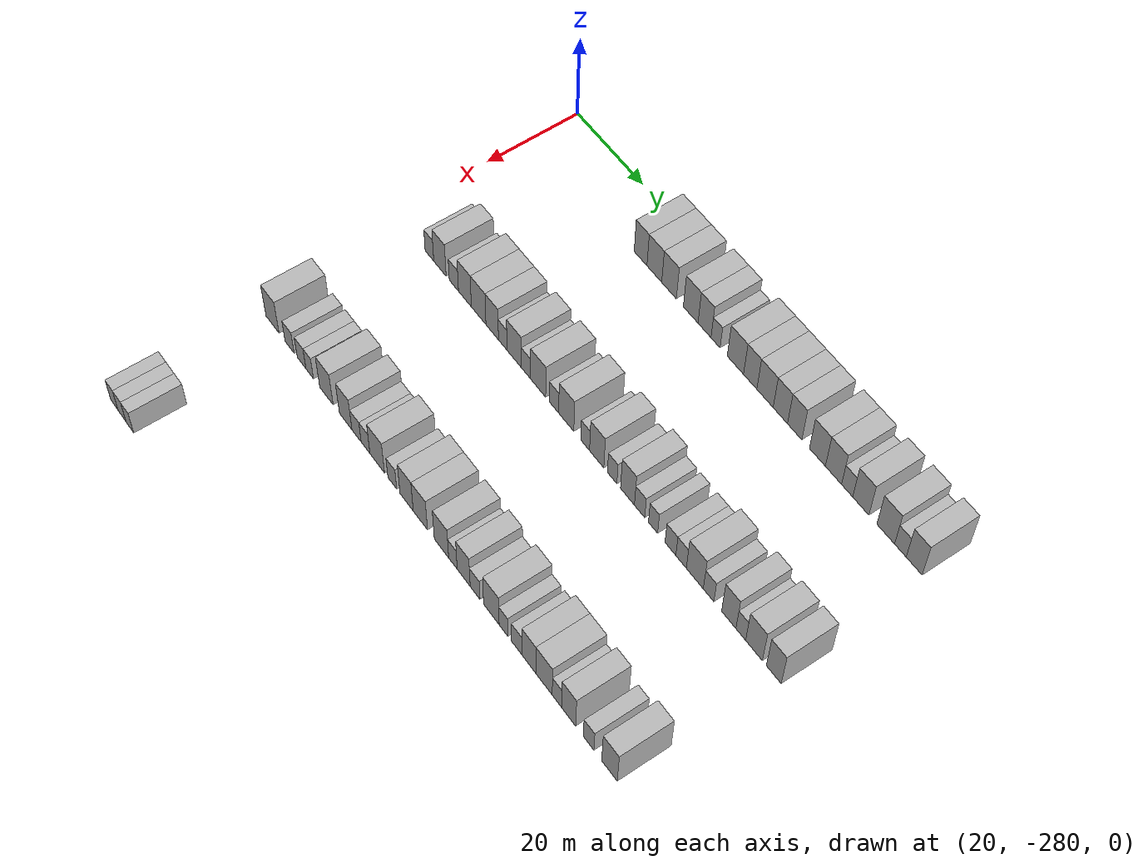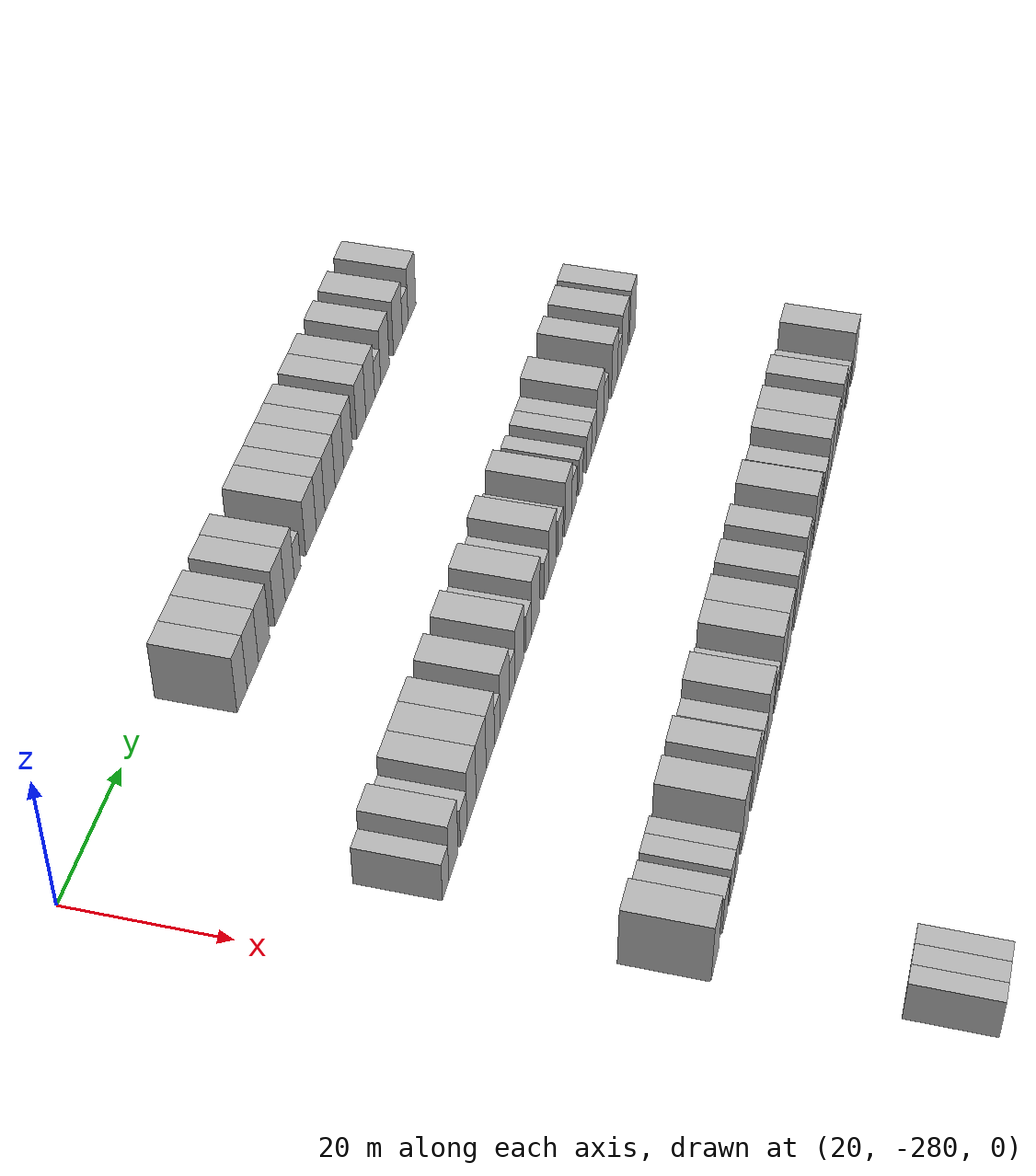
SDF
<sdf version="1.6">
 <world name="default">
  <model name="building_50">
   <static>1</static>
   <pose>25.0000 -247.0069 0 0.000000 0.000000 0.000000</pose>
   <link name="link">
    <pose>0 0 4.50 0 0 0</pose>
    <collision name="collision"><geometry><box><size>10.0000 3.7554 9.0000</size></box></geometry></collision>
    <visual name="visual">
     <cast_shadows>0</cast_shadows>
     <geometry><box><size>10.0000 3.7554 9.0000</size></box></geometry>
     <material>
      <script>
       <uri>model://HANNAS_wall/materials/scripts</uri>
       <uri>model://HANNAS_wall/materials/textures</uri>
       <name>vrc/HANNAS_wall</name>
      </script>
     </material>
    </visual>
   </link>
  </model>
  <model name="building_51">
   <static>1</static>
   <pose>25.0000 -242.9770 0 0.000000 0.000000 0.000000</pose>
   <link name="link">
    <pose>0 0 4.50 0 0 0</pose>
    <collision name="collision"><geometry><box><size>10.0000 4.3045 9.0000</size></box></geometry></collision>
    <visual name="visual">
     <cast_shadows>0</cast_shadows>
     <geometry><box><size>10.0000 4.3045 9.0000</size></box></geometry>
     <material>
      <script>
       <uri>model://HANNAS_wall/materials/scripts</uri>
       <uri>model://HANNAS_wall/materials/textures</uri>
       <name>vrc/HANNAS_wall</name>
      </script>
     </material>
    </visual>
   </link>
  </model>
  <model name="building_52">
   <static>1</static>
   <pose>25.0000 -238.6975 0 0.000000 0.000000 0.000000</pose>
   <link name="link">
    <pose>0 0 4.50 0 0 0</pose>
    <collision name="collision"><geometry><box><size>10.0000 4.2543 9.0000</size></box></geometry></collision>
    <visual name="visual">
     <cast_shadows>0</cast_shadows>
     <geometry><box><size>10.0000 4.2543 9.0000</size></box></geometry>
     <material>
      <script>
       <uri>model://HANNAS_wall/materials/scripts</uri>
       <uri>model://HANNAS_wall/materials/textures</uri>
       <name>vrc/HANNAS_wall</name>
      </script>
     </material>
    </visual>
   </link>
  </model>
  <model name="building_53">
   <static>1</static>
   <pose>25.0000 -232.4811 0 0.000000 0.000000 0.000000</pose>
   <link name="link">
    <pose>0 0 4.50 0 0 0</pose>
    <collision name="collision"><geometry><box><size>10.0000 4.1786 9.0000</size></box></geometry></collision>
    <visual name="visual">
     <cast_shadows>0</cast_shadows>
     <geometry><box><size>10.0000 4.1786 9.0000</size></box></geometry>
     <material>
      <script>
       <uri>model://HANNAS_wall/materials/scripts</uri>
       <uri>model://HANNAS_wall/materials/textures</uri>
       <name>vrc/HANNAS_wall</name>
      </script>
     </material>
    </visual>
   </link>
  </model>
  <model name="building_54">
   <static>1</static>
   <pose>25.0000 -228.5606 0 0.000000 0.000000 0.000000</pose>
   <link name="link">
    <pose>0 0 4.50 0 0 0</pose>
    <collision name="collision"><geometry><box><size>10.0000 3.6623 9.0000</size></box></geometry></collision>
    <visual name="visual">
     <cast_shadows>0</cast_shadows>
     <geometry><box><size>10.0000 3.6623 9.0000</size></box></geometry>
     <material>
      <script>
       <uri>model://HANNAS_wall/materials/scripts</uri>
       <uri>model://HANNAS_wall/materials/textures</uri>
       <name>vrc/HANNAS_wall</name>
      </script>
     </material>
    </visual>
   </link>
  </model>
  <model name="building_55">
   <static>1</static>
   <pose>25.0000 -225.4579 0 0.000000 0.000000 0.000000</pose>
   <link name="link">
    <pose>0 0 3.00 0 0 0</pose>
    <collision name="collision"><geometry><box><size>10.0000 2.5430 6.0000</size></box></geometry></collision>
    <visual name="visual">
     <cast_shadows>0</cast_shadows>
     <geometry><box><size>10.0000 2.5430 6.0000</size></box></geometry>
     <material>
      <script>
       <uri>model://HANNAS_wall/materials/scripts</uri>
       <uri>model://HANNAS_wall/materials/textures</uri>
       <name>vrc/HANNAS_wall</name>
      </script>
     </material>
    </visual>
   </link>
  </model>
  <model name="building_56">
   <static>1</static>
   <pose>25.0000 -219.9405 0 0.000000 0.000000 0.000000</pose>
   <link name="link">
    <pose>0 0 4.50 0 0 0</pose>
    <collision name="collision"><geometry><box><size>10.0000 4.4919 9.0000</size></box></geometry></collision>
    <visual name="visual">
     <cast_shadows>0</cast_shadows>
     <geometry><box><size>10.0000 4.4919 9.0000</size></box></geometry>
     <material>
      <script>
       <uri>model://HANNAS_wall/materials/scripts</uri>
       <uri>model://HANNAS_wall/materials/textures</uri>
       <name>vrc/HANNAS_wall</name>
      </script>
     </material>
    </visual>
   </link>
  </model>
  <model name="building_57">
   <static>1</static>
   <pose>25.0000 -215.8778 0 0.000000 0.000000 0.000000</pose>
   <link name="link">
    <pose>0 0 4.50 0 0 0</pose>
    <collision name="collision"><geometry><box><size>10.0000 3.6334 9.0000</size></box></geometry></collision>
    <visual name="visual">
     <cast_shadows>0</cast_shadows>
     <geometry><box><size>10.0000 3.6334 9.0000</size></box></geometry>
     <material>
      <script>
       <uri>model://HANNAS_wall/materials/scripts</uri>
       <uri>model://HANNAS_wall/materials/textures</uri>
       <name>vrc/HANNAS_wall</name>
      </script>
     </material>
    </visual>
   </link>
  </model>
  <model name="building_58">
   <static>1</static>
   <pose>25.0000 -211.8529 0 0.000000 0.000000 0.000000</pose>
   <link name="link">
    <pose>0 0 4.50 0 0 0</pose>
    <collision name="collision"><geometry><box><size>10.0000 4.4164 9.0000</size></box></geometry></collision>
    <visual name="visual">
     <cast_shadows>0</cast_shadows>
     <geometry><box><size>10.0000 4.4164 9.0000</size></box></geometry>
     <material>
      <script>
       <uri>model://HANNAS_wall/materials/scripts</uri>
       <uri>model://HANNAS_wall/materials/textures</uri>
       <name>vrc/HANNAS_wall</name>
      </script>
     </material>
    </visual>
   </link>
  </model>
  <model name="building_59">
   <static>1</static>
   <pose>25.0000 -207.7270 0 0.000000 0.000000 0.000000</pose>
   <link name="link">
    <pose>0 0 4.50 0 0 0</pose>
    <collision name="collision"><geometry><box><size>10.0000 3.8356 9.0000</size></box></geometry></collision>
    <visual name="visual">
     <cast_shadows>0</cast_shadows>
     <geometry><box><size>10.0000 3.8356 9.0000</size></box></geometry>
     <material>
      <script>
       <uri>model://HANNAS_wall/materials/scripts</uri>
       <uri>model://HANNAS_wall/materials/textures</uri>
       <name>vrc/HANNAS_wall</name>
      </script>
     </material>
    </visual>
   </link>
  </model>
  <model name="building_60">
   <static>1</static>
   <pose>25.0000 -203.9061 0 0.000000 0.000000 0.000000</pose>
   <link name="link">
    <pose>0 0 4.50 0 0 0</pose>
    <collision name="collision"><geometry><box><size>10.0000 3.8061 9.0000</size></box></geometry></collision>
    <visual name="visual">
     <cast_shadows>0</cast_shadows>
     <geometry><box><size>10.0000 3.8061 9.0000</size></box></geometry>
     <material>
      <script>
       <uri>model://HANNAS_wall/materials/scripts</uri>
       <uri>model://HANNAS_wall/materials/textures</uri>
       <name>vrc/HANNAS_wall</name>
      </script>
     </material>
    </visual>
   </link>
  </model>
  <model name="building_61">
   <static>1</static>
   <pose>25.0000 -197.9257 0 0.000000 0.000000 0.000000</pose>
   <link name="link">
    <pose>0 0 4.50 0 0 0</pose>
    <collision name="collision"><geometry><box><size>10.0000 4.1547 9.0000</size></box></geometry></collision>
    <visual name="visual">
     <cast_shadows>0</cast_shadows>
     <geometry><box><size>10.0000 4.1547 9.0000</size></box></geometry>
     <material>
      <script>
       <uri>model://HANNAS_wall/materials/scripts</uri>
       <uri>model://HANNAS_wall/materials/textures</uri>
       <name>vrc/HANNAS_wall</name>
      </script>
     </material>
    </visual>
   </link>
  </model>
  <model name="building_62">
   <static>1</static>
   <pose>25.0000 -193.7673 0 0.000000 0.000000 0.000000</pose>
   <link name="link">
    <pose>0 0 4.50 0 0 0</pose>
    <collision name="collision"><geometry><box><size>10.0000 4.1622 9.0000</size></box></geometry></collision>
    <visual name="visual">
     <cast_shadows>0</cast_shadows>
     <geometry><box><size>10.0000 4.1622 9.0000</size></box></geometry>
     <material>
      <script>
       <uri>model://HANNAS_wall/materials/scripts</uri>
       <uri>model://HANNAS_wall/materials/textures</uri>
       <name>vrc/HANNAS_wall</name>
      </script>
     </material>
    </visual>
   </link>
  </model>
  <model name="building_63">
   <static>1</static>
   <pose>25.0000 -190.2666 0 0.000000 0.000000 0.000000</pose>
   <link name="link">
    <pose>0 0 3.00 0 0 0</pose>
    <collision name="collision"><geometry><box><size>10.0000 2.8392 6.0000</size></box></geometry></collision>
    <visual name="visual">
     <cast_shadows>0</cast_shadows>
     <geometry><box><size>10.0000 2.8392 6.0000</size></box></geometry>
     <material>
      <script>
       <uri>model://HANNAS_wall/materials/scripts</uri>
       <uri>model://HANNAS_wall/materials/textures</uri>
       <name>vrc/HANNAS_wall</name>
      </script>
     </material>
    </visual>
   </link>
  </model>
  <model name="building_64">
   <static>1</static>
   <pose>25.0000 -186.7819 0 0.000000 0.000000 0.000000</pose>
   <link name="link">
    <pose>0 0 4.50 0 0 0</pose>
    <collision name="collision"><geometry><box><size>10.0000 4.1302 9.0000</size></box></geometry></collision>
    <visual name="visual">
     <cast_shadows>0</cast_shadows>
     <geometry><box><size>10.0000 4.1302 9.0000</size></box></geometry>
     <material>
      <script>
       <uri>model://HANNAS_wall/materials/scripts</uri>
       <uri>model://HANNAS_wall/materials/textures</uri>
       <name>vrc/HANNAS_wall</name>
      </script>
     </material>
    </visual>
   </link>
  </model>
  <model name="building_65">
   <static>1</static>
   <pose>25.0000 -180.5138 0 0.000000 0.000000 0.000000</pose>
   <link name="link">
    <pose>0 0 4.50 0 0 0</pose>
    <collision name="collision"><geometry><box><size>10.0000 4.4059 9.0000</size></box></geometry></collision>
    <visual name="visual">
     <cast_shadows>0</cast_shadows>
     <geometry><box><size>10.0000 4.4059 9.0000</size></box></geometry>
     <material>
      <script>
       <uri>model://HANNAS_wall/materials/scripts</uri>
       <uri>model://HANNAS_wall/materials/textures</uri>
       <name>vrc/HANNAS_wall</name>
      </script>
     </material>
    </visual>
   </link>
  </model>
  <model name="building_66">
   <static>1</static>
   <pose>25.0000 -176.8840 0 0.000000 0.000000 0.000000</pose>
   <link name="link">
    <pose>0 0 3.00 0 0 0</pose>
    <collision name="collision"><geometry><box><size>10.0000 2.8537 6.0000</size></box></geometry></collision>
    <visual name="visual">
     <cast_shadows>0</cast_shadows>
     <geometry><box><size>10.0000 2.8537 6.0000</size></box></geometry>
     <material>
      <script>
       <uri>model://HANNAS_wall/materials/scripts</uri>
       <uri>model://HANNAS_wall/materials/textures</uri>
       <name>vrc/HANNAS_wall</name>
      </script>
     </material>
    </visual>
   </link>
  </model>
  <model name="building_67">
   <static>1</static>
   <pose>25.0000 -173.4937 0 0.000000 0.000000 0.000000</pose>
   <link name="link">
    <pose>0 0 4.50 0 0 0</pose>
    <collision name="collision"><geometry><box><size>10.0000 3.9270 9.0000</size></box></geometry></collision>
    <visual name="visual">
     <cast_shadows>0</cast_shadows>
     <geometry><box><size>10.0000 3.9270 9.0000</size></box></geometry>
     <material>
      <script>
       <uri>model://HANNAS_wall/materials/scripts</uri>
       <uri>model://HANNAS_wall/materials/textures</uri>
       <name>vrc/HANNAS_wall</name>
      </script>
     </material>
    </visual>
   </link>
  </model>
  <model name="building_275">
   <static>1</static>
   <pose>55.0000 -268.3314 0 0.000000 0.000000 0.000000</pose>
   <link name="link">
    <pose>0 0 3.00 0 0 0</pose>
    <collision name="collision"><geometry><box><size>10.0000 2.7433 6.0000</size></box></geometry></collision>
    <visual name="visual">
     <cast_shadows>0</cast_shadows>
     <geometry><box><size>10.0000 2.7433 6.0000</size></box></geometry>
     <material>
      <script>
       <uri>model://HANNAS_wall/materials/scripts</uri>
       <uri>model://HANNAS_wall/materials/textures</uri>
       <name>vrc/HANNAS_wall</name>
      </script>
     </material>
    </visual>
   </link>
  </model>
  <model name="building_276">
   <static>1</static>
   <pose>55.0000 -264.9989 0 0.000000 0.000000 0.000000</pose>
   <link name="link">
    <pose>0 0 4.50 0 0 0</pose>
    <collision name="collision"><geometry><box><size>10.0000 3.9215 9.0000</size></box></geometry></collision>
    <visual name="visual">
     <cast_shadows>0</cast_shadows>
     <geometry><box><size>10.0000 3.9215 9.0000</size></box></geometry>
     <material>
      <script>
       <uri>model://HANNAS_wall/materials/scripts</uri>
       <uri>model://HANNAS_wall/materials/textures</uri>
       <name>vrc/HANNAS_wall</name>
      </script>
     </material>
    </visual>
   </link>
  </model>
  <model name="building_277">
   <static>1</static>
   <pose>55.0000 -260.5960 0 0.000000 0.000000 0.000000</pose>
   <link name="link">
    <pose>0 0 3.00 0 0 0</pose>
    <collision name="collision"><geometry><box><size>10.0000 2.8844 6.0000</size></box></geometry></collision>
    <visual name="visual">
     <cast_shadows>0</cast_shadows>
     <geometry><box><size>10.0000 2.8844 6.0000</size></box></geometry>
     <material>
      <script>
       <uri>model://HANNAS_wall/materials/scripts</uri>
       <uri>model://HANNAS_wall/materials/textures</uri>
       <name>vrc/HANNAS_wall</name>
      </script>
     </material>
    </visual>
   </link>
  </model>
  <model name="building_278">
   <static>1</static>
   <pose>55.0000 -257.1474 0 0.000000 0.000000 0.000000</pose>
   <link name="link">
    <pose>0 0 4.50 0 0 0</pose>
    <collision name="collision"><geometry><box><size>10.0000 4.0128 9.0000</size></box></geometry></collision>
    <visual name="visual">
     <cast_shadows>0</cast_shadows>
     <geometry><box><size>10.0000 4.0128 9.0000</size></box></geometry>
     <material>
      <script>
       <uri>model://HANNAS_wall/materials/scripts</uri>
       <uri>model://HANNAS_wall/materials/textures</uri>
       <name>vrc/HANNAS_wall</name>
      </script>
     </material>
    </visual>
   </link>
  </model>
  <model name="building_279">
   <static>1</static>
   <pose>55.0000 -252.8979 0 0.000000 0.000000 0.000000</pose>
   <link name="link">
    <pose>0 0 4.50 0 0 0</pose>
    <collision name="collision"><geometry><box><size>10.0000 4.4862 9.0000</size></box></geometry></collision>
    <visual name="visual">
     <cast_shadows>0</cast_shadows>
     <geometry><box><size>10.0000 4.4862 9.0000</size></box></geometry>
     <material>
      <script>
       <uri>model://HANNAS_wall/materials/scripts</uri>
       <uri>model://HANNAS_wall/materials/textures</uri>
       <name>vrc/HANNAS_wall</name>
      </script>
     </material>
    </visual>
   </link>
  </model>
  <model name="building_280">
   <static>1</static>
   <pose>55.0000 -248.7383 0 0.000000 0.000000 0.000000</pose>
   <link name="link">
    <pose>0 0 4.50 0 0 0</pose>
    <collision name="collision"><geometry><box><size>10.0000 3.8331 9.0000</size></box></geometry></collision>
    <visual name="visual">
     <cast_shadows>0</cast_shadows>
     <geometry><box><size>10.0000 3.8331 9.0000</size></box></geometry>
     <material>
      <script>
       <uri>model://HANNAS_wall/materials/scripts</uri>
       <uri>model://HANNAS_wall/materials/textures</uri>
       <name>vrc/HANNAS_wall</name>
      </script>
     </material>
    </visual>
   </link>
  </model>
  <model name="building_281">
   <static>1</static>
   <pose>55.0000 -245.5391 0 0.000000 0.000000 0.000000</pose>
   <link name="link">
    <pose>0 0 3.00 0 0 0</pose>
    <collision name="collision"><geometry><box><size>10.0000 2.5652 6.0000</size></box></geometry></collision>
    <visual name="visual">
     <cast_shadows>0</cast_shadows>
     <geometry><box><size>10.0000 2.5652 6.0000</size></box></geometry>
     <material>
      <script>
       <uri>model://HANNAS_wall/materials/scripts</uri>
       <uri>model://HANNAS_wall/materials/textures</uri>
       <name>vrc/HANNAS_wall</name>
      </script>
     </material>
    </visual>
   </link>
  </model>
  <model name="building_282">
   <static>1</static>
   <pose>55.0000 -242.0827 0 0.000000 0.000000 0.000000</pose>
   <link name="link">
    <pose>0 0 4.50 0 0 0</pose>
    <collision name="collision"><geometry><box><size>10.0000 4.3477 9.0000</size></box></geometry></collision>
    <visual name="visual">
     <cast_shadows>0</cast_shadows>
     <geometry><box><size>10.0000 4.3477 9.0000</size></box></geometry>
     <material>
      <script>
       <uri>model://HANNAS_wall/materials/scripts</uri>
       <uri>model://HANNAS_wall/materials/textures</uri>
       <name>vrc/HANNAS_wall</name>
      </script>
     </material>
    </visual>
   </link>
  </model>
  <model name="building_283">
   <static>1</static>
   <pose>55.0000 -238.5366 0 0.000000 0.000000 0.000000</pose>
   <link name="link">
    <pose>0 0 3.00 0 0 0</pose>
    <collision name="collision"><geometry><box><size>10.0000 2.7446 6.0000</size></box></geometry></collision>
    <visual name="visual">
     <cast_shadows>0</cast_shadows>
     <geometry><box><size>10.0000 2.7446 6.0000</size></box></geometry>
     <material>
      <script>
       <uri>model://HANNAS_wall/materials/scripts</uri>
       <uri>model://HANNAS_wall/materials/textures</uri>
       <name>vrc/HANNAS_wall</name>
      </script>
     </material>
    </visual>
   </link>
  </model>
  <model name="building_284">
   <static>1</static>
   <pose>55.0000 -234.9610 0 0.000000 0.000000 0.000000</pose>
   <link name="link">
    <pose>0 0 4.50 0 0 0</pose>
    <collision name="collision"><geometry><box><size>10.0000 4.4067 9.0000</size></box></geometry></collision>
    <visual name="visual">
     <cast_shadows>0</cast_shadows>
     <geometry><box><size>10.0000 4.4067 9.0000</size></box></geometry>
     <material>
      <script>
       <uri>model://HANNAS_wall/materials/scripts</uri>
       <uri>model://HANNAS_wall/materials/textures</uri>
       <name>vrc/HANNAS_wall</name>
      </script>
     </material>
    </visual>
   </link>
  </model>
  <model name="building_285">
   <static>1</static>
   <pose>55.0000 -230.3668 0 0.000000 0.000000 0.000000</pose>
   <link name="link">
    <pose>0 0 3.00 0 0 0</pose>
    <collision name="collision"><geometry><box><size>10.0000 2.7816 6.0000</size></box></geometry></collision>
    <visual name="visual">
     <cast_shadows>0</cast_shadows>
     <geometry><box><size>10.0000 2.7816 6.0000</size></box></geometry>
     <material>
      <script>
       <uri>model://HANNAS_wall/materials/scripts</uri>
       <uri>model://HANNAS_wall/materials/textures</uri>
       <name>vrc/HANNAS_wall</name>
      </script>
     </material>
    </visual>
   </link>
  </model>
  <model name="building_286">
   <static>1</static>
   <pose>55.0000 -226.7955 0 0.000000 0.000000 0.000000</pose>
   <link name="link">
    <pose>0 0 4.50 0 0 0</pose>
    <collision name="collision"><geometry><box><size>10.0000 4.3611 9.0000</size></box></geometry></collision>
    <visual name="visual">
     <cast_shadows>0</cast_shadows>
     <geometry><box><size>10.0000 4.3611 9.0000</size></box></geometry>
     <material>
      <script>
       <uri>model://HANNAS_wall/materials/scripts</uri>
       <uri>model://HANNAS_wall/materials/textures</uri>
       <name>vrc/HANNAS_wall</name>
      </script>
     </material>
    </visual>
   </link>
  </model>
  <model name="building_287">
   <static>1</static>
   <pose>55.0000 -221.3709 0 0.000000 0.000000 0.000000</pose>
   <link name="link">
    <pose>0 0 3.00 0 0 0</pose>
    <collision name="collision"><geometry><box><size>10.0000 2.4881 6.0000</size></box></geometry></collision>
    <visual name="visual">
     <cast_shadows>0</cast_shadows>
     <geometry><box><size>10.0000 2.4881 6.0000</size></box></geometry>
     <material>
      <script>
       <uri>model://HANNAS_wall/materials/scripts</uri>
       <uri>model://HANNAS_wall/materials/textures</uri>
       <name>vrc/HANNAS_wall</name>
      </script>
     </material>
    </visual>
   </link>
  </model>
  <model name="building_288">
   <static>1</static>
   <pose>55.0000 -218.1112 0 0.000000 0.000000 0.000000</pose>
   <link name="link">
    <pose>0 0 4.50 0 0 0</pose>
    <collision name="collision"><geometry><box><size>10.0000 4.0314 9.0000</size></box></geometry></collision>
    <visual name="visual">
     <cast_shadows>0</cast_shadows>
     <geometry><box><size>10.0000 4.0314 9.0000</size></box></geometry>
     <material>
      <script>
       <uri>model://HANNAS_wall/materials/scripts</uri>
       <uri>model://HANNAS_wall/materials/textures</uri>
       <name>vrc/HANNAS_wall</name>
      </script>
     </material>
    </visual>
   </link>
  </model>
  <model name="building_289">
   <static>1</static>
   <pose>55.0000 -213.7723 0 0.000000 0.000000 0.000000</pose>
   <link name="link">
    <pose>0 0 3.00 0 0 0</pose>
    <collision name="collision"><geometry><box><size>10.0000 2.6465 6.0000</size></box></geometry></collision>
    <visual name="visual">
     <cast_shadows>0</cast_shadows>
     <geometry><box><size>10.0000 2.6465 6.0000</size></box></geometry>
     <material>
      <script>
       <uri>model://HANNAS_wall/materials/scripts</uri>
       <uri>model://HANNAS_wall/materials/textures</uri>
       <name>vrc/HANNAS_wall</name>
      </script>
     </material>
    </visual>
   </link>
  </model>
  <model name="building_290">
   <static>1</static>
   <pose>55.0000 -209.5289 0 0.000000 0.000000 0.000000</pose>
   <link name="link">
    <pose>0 0 4.50 0 0 0</pose>
    <collision name="collision"><geometry><box><size>10.0000 3.8403 9.0000</size></box></geometry></collision>
    <visual name="visual">
     <cast_shadows>0</cast_shadows>
     <geometry><box><size>10.0000 3.8403 9.0000</size></box></geometry>
     <material>
      <script>
       <uri>model://HANNAS_wall/materials/scripts</uri>
       <uri>model://HANNAS_wall/materials/textures</uri>
       <name>vrc/HANNAS_wall</name>
      </script>
     </material>
    </visual>
   </link>
  </model>
  <model name="building_291">
   <static>1</static>
   <pose>55.0000 -206.1989 0 0.000000 0.000000 0.000000</pose>
   <link name="link">
    <pose>0 0 3.00 0 0 0</pose>
    <collision name="collision"><geometry><box><size>10.0000 2.8196 6.0000</size></box></geometry></collision>
    <visual name="visual">
     <cast_shadows>0</cast_shadows>
     <geometry><box><size>10.0000 2.8196 6.0000</size></box></geometry>
     <material>
      <script>
       <uri>model://HANNAS_wall/materials/scripts</uri>
       <uri>model://HANNAS_wall/materials/textures</uri>
       <name>vrc/HANNAS_wall</name>
      </script>
     </material>
    </visual>
   </link>
  </model>
  <model name="building_292">
   <static>1</static>
   <pose>55.0000 -202.5474 0 0.000000 0.000000 0.000000</pose>
   <link name="link">
    <pose>0 0 3.00 0 0 0</pose>
    <collision name="collision"><geometry><box><size>10.0000 2.4834 6.0000</size></box></geometry></collision>
    <visual name="visual">
     <cast_shadows>0</cast_shadows>
     <geometry><box><size>10.0000 2.4834 6.0000</size></box></geometry>
     <material>
      <script>
       <uri>model://HANNAS_wall/materials/scripts</uri>
       <uri>model://HANNAS_wall/materials/textures</uri>
       <name>vrc/HANNAS_wall</name>
      </script>
     </material>
    </visual>
   </link>
  </model>
  <model name="building_293">
   <static>1</static>
   <pose>55.0000 -197.8632 0 0.000000 0.000000 0.000000</pose>
   <link name="link">
    <pose>0 0 3.00 0 0 0</pose>
    <collision name="collision"><geometry><box><size>10.0000 2.8852 6.0000</size></box></geometry></collision>
    <visual name="visual">
     <cast_shadows>0</cast_shadows>
     <geometry><box><size>10.0000 2.8852 6.0000</size></box></geometry>
     <material>
      <script>
       <uri>model://HANNAS_wall/materials/scripts</uri>
       <uri>model://HANNAS_wall/materials/textures</uri>
       <name>vrc/HANNAS_wall</name>
      </script>
     </material>
    </visual>
   </link>
  </model>
  <model name="building_294">
   <static>1</static>
   <pose>55.0000 -195.0324 0 0.000000 0.000000 0.000000</pose>
   <link name="link">
    <pose>0 0 3.00 0 0 0</pose>
    <collision name="collision"><geometry><box><size>10.0000 2.7764 6.0000</size></box></geometry></collision>
    <visual name="visual">
     <cast_shadows>0</cast_shadows>
     <geometry><box><size>10.0000 2.7764 6.0000</size></box></geometry>
     <material>
      <script>
       <uri>model://HANNAS_wall/materials/scripts</uri>
       <uri>model://HANNAS_wall/materials/textures</uri>
       <name>vrc/HANNAS_wall</name>
      </script>
     </material>
    </visual>
   </link>
  </model>
  <model name="building_295">
   <static>1</static>
   <pose>55.0000 -191.4166 0 0.000000 0.000000 0.000000</pose>
   <link name="link">
    <pose>0 0 4.50 0 0 0</pose>
    <collision name="collision"><geometry><box><size>10.0000 4.4552 9.0000</size></box></geometry></collision>
    <visual name="visual">
     <cast_shadows>0</cast_shadows>
     <geometry><box><size>10.0000 4.4552 9.0000</size></box></geometry>
     <material>
      <script>
       <uri>model://HANNAS_wall/materials/scripts</uri>
       <uri>model://HANNAS_wall/materials/textures</uri>
       <name>vrc/HANNAS_wall</name>
      </script>
     </material>
    </visual>
   </link>
  </model>
  <model name="building_296">
   <static>1</static>
   <pose>55.0000 -187.8154 0 0.000000 0.000000 0.000000</pose>
   <link name="link">
    <pose>0 0 3.00 0 0 0</pose>
    <collision name="collision"><geometry><box><size>10.0000 2.7471 6.0000</size></box></geometry></collision>
    <visual name="visual">
     <cast_shadows>0</cast_shadows>
     <geometry><box><size>10.0000 2.7471 6.0000</size></box></geometry>
     <material>
      <script>
       <uri>model://HANNAS_wall/materials/scripts</uri>
       <uri>model://HANNAS_wall/materials/textures</uri>
       <name>vrc/HANNAS_wall</name>
      </script>
     </material>
    </visual>
   </link>
  </model>
  <model name="building_297">
   <static>1</static>
   <pose>55.0000 -182.6057 0 0.000000 0.000000 0.000000</pose>
   <link name="link">
    <pose>0 0 4.50 0 0 0</pose>
    <collision name="collision"><geometry><box><size>10.0000 3.6723 9.0000</size></box></geometry></collision>
    <visual name="visual">
     <cast_shadows>0</cast_shadows>
     <geometry><box><size>10.0000 3.6723 9.0000</size></box></geometry>
     <material>
      <script>
       <uri>model://HANNAS_wall/materials/scripts</uri>
       <uri>model://HANNAS_wall/materials/textures</uri>
       <name>vrc/HANNAS_wall</name>
      </script>
     </material>
    </visual>
   </link>
  </model>
  <model name="building_298">
   <static>1</static>
   <pose>55.0000 -179.5356 0 0.000000 0.000000 0.000000</pose>
   <link name="link">
    <pose>0 0 3.00 0 0 0</pose>
    <collision name="collision"><geometry><box><size>10.0000 2.4679 6.0000</size></box></geometry></collision>
    <visual name="visual">
     <cast_shadows>0</cast_shadows>
     <geometry><box><size>10.0000 2.4679 6.0000</size></box></geometry>
     <material>
      <script>
       <uri>model://HANNAS_wall/materials/scripts</uri>
       <uri>model://HANNAS_wall/materials/textures</uri>
       <name>vrc/HANNAS_wall</name>
      </script>
     </material>
    </visual>
   </link>
  </model>
  <model name="building_299">
   <static>1</static>
   <pose>55.0000 -176.1946 0 0.000000 0.000000 0.000000</pose>
   <link name="link">
    <pose>0 0 4.50 0 0 0</pose>
    <collision name="collision"><geometry><box><size>10.0000 4.2141 9.0000</size></box></geometry></collision>
    <visual name="visual">
     <cast_shadows>0</cast_shadows>
     <geometry><box><size>10.0000 4.2141 9.0000</size></box></geometry>
     <material>
      <script>
       <uri>model://HANNAS_wall/materials/scripts</uri>
       <uri>model://HANNAS_wall/materials/textures</uri>
       <name>vrc/HANNAS_wall</name>
      </script>
     </material>
    </visual>
   </link>
  </model>
  <model name="building_300">
   <static>1</static>
   <pose>55.0000 -171.2396 0 0.000000 0.000000 0.000000</pose>
   <link name="link">
    <pose>0 0 4.50 0 0 0</pose>
    <collision name="collision"><geometry><box><size>10.0000 3.6958 9.0000</size></box></geometry></collision>
    <visual name="visual">
     <cast_shadows>0</cast_shadows>
     <geometry><box><size>10.0000 3.6958 9.0000</size></box></geometry>
     <material>
      <script>
       <uri>model://HANNAS_wall/materials/scripts</uri>
       <uri>model://HANNAS_wall/materials/textures</uri>
       <name>vrc/HANNAS_wall</name>
      </script>
     </material>
    </visual>
   </link>
  </model>
  <model name="building_496">
   <static>1</static>
   <pose>85.0000 -271.2570 0 0.000000 0.000000 0.000000</pose>
   <link name="link">
    <pose>0 0 4.50 0 0 0</pose>
    <collision name="collision"><geometry><box><size>10.0000 4.3426 9.0000</size></box></geometry></collision>
    <visual name="visual">
     <cast_shadows>0</cast_shadows>
     <geometry><box><size>10.0000 4.3426 9.0000</size></box></geometry>
     <material>
      <script>
       <uri>model://HANNAS_wall/materials/scripts</uri>
       <uri>model://HANNAS_wall/materials/textures</uri>
       <name>vrc/HANNAS_wall</name>
      </script>
     </material>
    </visual>
   </link>
  </model>
  <model name="building_497">
   <static>1</static>
   <pose>85.0000 -265.5938 0 0.000000 0.000000 0.000000</pose>
   <link name="link">
    <pose>0 0 3.00 0 0 0</pose>
    <collision name="collision"><geometry><box><size>10.0000 2.9838 6.0000</size></box></geometry></collision>
    <visual name="visual">
     <cast_shadows>0</cast_shadows>
     <geometry><box><size>10.0000 2.9838 6.0000</size></box></geometry>
     <material>
      <script>
       <uri>model://HANNAS_wall/materials/scripts</uri>
       <uri>model://HANNAS_wall/materials/textures</uri>
       <name>vrc/HANNAS_wall</name>
      </script>
     </material>
    </visual>
   </link>
  </model>
  <model name="building_498">
   <static>1</static>
   <pose>85.0000 -261.6805 0 0.000000 0.000000 0.000000</pose>
   <link name="link">
    <pose>0 0 3.00 0 0 0</pose>
    <collision name="collision"><geometry><box><size>10.0000 2.8429 6.0000</size></box></geometry></collision>
    <visual name="visual">
     <cast_shadows>0</cast_shadows>
     <geometry><box><size>10.0000 2.8429 6.0000</size></box></geometry>
     <material>
      <script>
       <uri>model://HANNAS_wall/materials/scripts</uri>
       <uri>model://HANNAS_wall/materials/textures</uri>
       <name>vrc/HANNAS_wall</name>
      </script>
     </material>
    </visual>
   </link>
  </model>
  <model name="building_499">
   <static>1</static>
   <pose>85.0000 -259.0395 0 0.000000 0.000000 0.000000</pose>
   <link name="link">
    <pose>0 0 3.00 0 0 0</pose>
    <collision name="collision"><geometry><box><size>10.0000 2.4392 6.0000</size></box></geometry></collision>
    <visual name="visual">
     <cast_shadows>0</cast_shadows>
     <geometry><box><size>10.0000 2.4392 6.0000</size></box></geometry>
     <material>
      <script>
       <uri>model://HANNAS_wall/materials/scripts</uri>
       <uri>model://HANNAS_wall/materials/textures</uri>
       <name>vrc/HANNAS_wall</name>
      </script>
     </material>
    </visual>
   </link>
  </model>
  <model name="building_500">
   <static>1</static>
   <pose>85.0000 -253.6809 0 0.000000 0.000000 0.000000</pose>
   <link name="link">
    <pose>0 0 4.50 0 0 0</pose>
    <collision name="collision"><geometry><box><size>10.0000 4.2779 9.0000</size></box></geometry></collision>
    <visual name="visual">
     <cast_shadows>0</cast_shadows>
     <geometry><box><size>10.0000 4.2779 9.0000</size></box></geometry>
     <material>
      <script>
       <uri>model://HANNAS_wall/materials/scripts</uri>
       <uri>model://HANNAS_wall/materials/textures</uri>
       <name>vrc/HANNAS_wall</name>
      </script>
     </material>
    </visual>
   </link>
  </model>
  <model name="building_501">
   <static>1</static>
   <pose>85.0000 -247.5766 0 0.000000 0.000000 0.000000</pose>
   <link name="link">
    <pose>0 0 4.50 0 0 0</pose>
    <collision name="collision"><geometry><box><size>10.0000 3.9307 9.0000</size></box></geometry></collision>
    <visual name="visual">
     <cast_shadows>0</cast_shadows>
     <geometry><box><size>10.0000 3.9307 9.0000</size></box></geometry>
     <material>
      <script>
       <uri>model://HANNAS_wall/materials/scripts</uri>
       <uri>model://HANNAS_wall/materials/textures</uri>
       <name>vrc/HANNAS_wall</name>
      </script>
     </material>
    </visual>
   </link>
  </model>
  <model name="building_502">
   <static>1</static>
   <pose>85.0000 -244.1770 0 0.000000 0.000000 0.000000</pose>
   <link name="link">
    <pose>0 0 3.00 0 0 0</pose>
    <collision name="collision"><geometry><box><size>10.0000 2.8685 6.0000</size></box></geometry></collision>
    <visual name="visual">
     <cast_shadows>0</cast_shadows>
     <geometry><box><size>10.0000 2.8685 6.0000</size></box></geometry>
     <material>
      <script>
       <uri>model://HANNAS_wall/materials/scripts</uri>
       <uri>model://HANNAS_wall/materials/textures</uri>
       <name>vrc/HANNAS_wall</name>
      </script>
     </material>
    </visual>
   </link>
  </model>
  <model name="building_503">
   <static>1</static>
   <pose>85.0000 -241.3787 0 0.000000 0.000000 0.000000</pose>
   <link name="link">
    <pose>0 0 3.00 0 0 0</pose>
    <collision name="collision"><geometry><box><size>10.0000 2.7281 6.0000</size></box></geometry></collision>
    <visual name="visual">
     <cast_shadows>0</cast_shadows>
     <geometry><box><size>10.0000 2.7281 6.0000</size></box></geometry>
     <material>
      <script>
       <uri>model://HANNAS_wall/materials/scripts</uri>
       <uri>model://HANNAS_wall/materials/textures</uri>
       <name>vrc/HANNAS_wall</name>
      </script>
     </material>
    </visual>
   </link>
  </model>
  <model name="building_504">
   <static>1</static>
   <pose>85.0000 -237.7786 0 0.000000 0.000000 0.000000</pose>
   <link name="link">
    <pose>0 0 4.50 0 0 0</pose>
    <collision name="collision"><geometry><box><size>10.0000 4.4722 9.0000</size></box></geometry></collision>
    <visual name="visual">
     <cast_shadows>0</cast_shadows>
     <geometry><box><size>10.0000 4.4722 9.0000</size></box></geometry>
     <material>
      <script>
       <uri>model://HANNAS_wall/materials/scripts</uri>
       <uri>model://HANNAS_wall/materials/textures</uri>
       <name>vrc/HANNAS_wall</name>
      </script>
     </material>
    </visual>
   </link>
  </model>
  <model name="building_505">
   <static>1</static>
   <pose>85.0000 -233.2016 0 0.000000 0.000000 0.000000</pose>
   <link name="link">
    <pose>0 0 3.00 0 0 0</pose>
    <collision name="collision"><geometry><box><size>10.0000 2.6817 6.0000</size></box></geometry></collision>
    <visual name="visual">
     <cast_shadows>0</cast_shadows>
     <geometry><box><size>10.0000 2.6817 6.0000</size></box></geometry>
     <material>
      <script>
       <uri>model://HANNAS_wall/materials/scripts</uri>
       <uri>model://HANNAS_wall/materials/textures</uri>
       <name>vrc/HANNAS_wall</name>
      </script>
     </material>
    </visual>
   </link>
  </model>
  <model name="building_506">
   <static>1</static>
   <pose>85.0000 -228.8775 0 0.000000 0.000000 0.000000</pose>
   <link name="link">
    <pose>0 0 4.50 0 0 0</pose>
    <collision name="collision"><geometry><box><size>10.0000 3.9665 9.0000</size></box></geometry></collision>
    <visual name="visual">
     <cast_shadows>0</cast_shadows>
     <geometry><box><size>10.0000 3.9665 9.0000</size></box></geometry>
     <material>
      <script>
       <uri>model://HANNAS_wall/materials/scripts</uri>
       <uri>model://HANNAS_wall/materials/textures</uri>
       <name>vrc/HANNAS_wall</name>
      </script>
     </material>
    </visual>
   </link>
  </model>
  <model name="building_507">
   <static>1</static>
   <pose>85.0000 -224.7920 0 0.000000 0.000000 0.000000</pose>
   <link name="link">
    <pose>0 0 4.50 0 0 0</pose>
    <collision name="collision"><geometry><box><size>10.0000 4.2045 9.0000</size></box></geometry></collision>
    <visual name="visual">
     <cast_shadows>0</cast_shadows>
     <geometry><box><size>10.0000 4.2045 9.0000</size></box></geometry>
     <material>
      <script>
       <uri>model://HANNAS_wall/materials/scripts</uri>
       <uri>model://HANNAS_wall/materials/textures</uri>
       <name>vrc/HANNAS_wall</name>
      </script>
     </material>
    </visual>
   </link>
  </model>
  <model name="building_508">
   <static>1</static>
   <pose>85.0000 -218.6005 0 0.000000 0.000000 0.000000</pose>
   <link name="link">
    <pose>0 0 4.50 0 0 0</pose>
    <collision name="collision"><geometry><box><size>10.0000 4.1784 9.0000</size></box></geometry></collision>
    <visual name="visual">
     <cast_shadows>0</cast_shadows>
     <geometry><box><size>10.0000 4.1784 9.0000</size></box></geometry>
     <material>
      <script>
       <uri>model://HANNAS_wall/materials/scripts</uri>
       <uri>model://HANNAS_wall/materials/textures</uri>
       <name>vrc/HANNAS_wall</name>
      </script>
     </material>
    </visual>
   </link>
  </model>
  <model name="building_509">
   <static>1</static>
   <pose>85.0000 -215.2835 0 0.000000 0.000000 0.000000</pose>
   <link name="link">
    <pose>0 0 3.00 0 0 0</pose>
    <collision name="collision"><geometry><box><size>10.0000 2.4557 6.0000</size></box></geometry></collision>
    <visual name="visual">
     <cast_shadows>0</cast_shadows>
     <geometry><box><size>10.0000 2.4557 6.0000</size></box></geometry>
     <material>
      <script>
       <uri>model://HANNAS_wall/materials/scripts</uri>
       <uri>model://HANNAS_wall/materials/textures</uri>
       <name>vrc/HANNAS_wall</name>
      </script>
     </material>
    </visual>
   </link>
  </model>
  <model name="building_510">
   <static>1</static>
   <pose>85.0000 -212.2012 0 0.000000 0.000000 0.000000</pose>
   <link name="link">
    <pose>0 0 4.50 0 0 0</pose>
    <collision name="collision"><geometry><box><size>10.0000 3.7089 9.0000</size></box></geometry></collision>
    <visual name="visual">
     <cast_shadows>0</cast_shadows>
     <geometry><box><size>10.0000 3.7089 9.0000</size></box></geometry>
     <material>
      <script>
       <uri>model://HANNAS_wall/materials/scripts</uri>
       <uri>model://HANNAS_wall/materials/textures</uri>
       <name>vrc/HANNAS_wall</name>
      </script>
     </material>
    </visual>
   </link>
  </model>
  <model name="building_511">
   <static>1</static>
   <pose>85.0000 -208.9498 0 0.000000 0.000000 0.000000</pose>
   <link name="link">
    <pose>0 0 3.00 0 0 0</pose>
    <collision name="collision"><geometry><box><size>10.0000 2.7938 6.0000</size></box></geometry></collision>
    <visual name="visual">
     <cast_shadows>0</cast_shadows>
     <geometry><box><size>10.0000 2.7938 6.0000</size></box></geometry>
     <material>
      <script>
       <uri>model://HANNAS_wall/materials/scripts</uri>
       <uri>model://HANNAS_wall/materials/textures</uri>
       <name>vrc/HANNAS_wall</name>
      </script>
     </material>
    </visual>
   </link>
  </model>
  <model name="building_512">
   <static>1</static>
   <pose>85.0000 -204.3736 0 0.000000 0.000000 0.000000</pose>
   <link name="link">
    <pose>0 0 4.50 0 0 0</pose>
    <collision name="collision"><geometry><box><size>10.0000 4.3586 9.0000</size></box></geometry></collision>
    <visual name="visual">
     <cast_shadows>0</cast_shadows>
     <geometry><box><size>10.0000 4.3586 9.0000</size></box></geometry>
     <material>
      <script>
       <uri>model://HANNAS_wall/materials/scripts</uri>
       <uri>model://HANNAS_wall/materials/textures</uri>
       <name>vrc/HANNAS_wall</name>
      </script>
     </material>
    </visual>
   </link>
  </model>
  <model name="building_513">
   <static>1</static>
   <pose>85.0000 -200.9729 0 0.000000 0.000000 0.000000</pose>
   <link name="link">
    <pose>0 0 3.00 0 0 0</pose>
    <collision name="collision"><geometry><box><size>10.0000 2.4429 6.0000</size></box></geometry></collision>
    <visual name="visual">
     <cast_shadows>0</cast_shadows>
     <geometry><box><size>10.0000 2.4429 6.0000</size></box></geometry>
     <material>
      <script>
       <uri>model://HANNAS_wall/materials/scripts</uri>
       <uri>model://HANNAS_wall/materials/textures</uri>
       <name>vrc/HANNAS_wall</name>
      </script>
     </material>
    </visual>
   </link>
  </model>
  <model name="building_514">
   <static>1</static>
   <pose>85.0000 -197.3303 0 0.000000 0.000000 0.000000</pose>
   <link name="link">
    <pose>0 0 3.00 0 0 0</pose>
    <collision name="collision"><geometry><box><size>10.0000 2.8422 6.0000</size></box></geometry></collision>
    <visual name="visual">
     <cast_shadows>0</cast_shadows>
     <geometry><box><size>10.0000 2.8422 6.0000</size></box></geometry>
     <material>
      <script>
       <uri>model://HANNAS_wall/materials/scripts</uri>
       <uri>model://HANNAS_wall/materials/textures</uri>
       <name>vrc/HANNAS_wall</name>
      </script>
     </material>
    </visual>
   </link>
  </model>
  <model name="building_515">
   <static>1</static>
   <pose>85.0000 -194.0302 0 0.000000 0.000000 0.000000</pose>
   <link name="link">
    <pose>0 0 4.50 0 0 0</pose>
    <collision name="collision"><geometry><box><size>10.0000 3.7580 9.0000</size></box></geometry></collision>
    <visual name="visual">
     <cast_shadows>0</cast_shadows>
     <geometry><box><size>10.0000 3.7580 9.0000</size></box></geometry>
     <material>
      <script>
       <uri>model://HANNAS_wall/materials/scripts</uri>
       <uri>model://HANNAS_wall/materials/textures</uri>
       <name>vrc/HANNAS_wall</name>
      </script>
     </material>
    </visual>
   </link>
  </model>
  <model name="building_516">
   <static>1</static>
   <pose>85.0000 -189.9370 0 0.000000 0.000000 0.000000</pose>
   <link name="link">
    <pose>0 0 4.50 0 0 0</pose>
    <collision name="collision"><geometry><box><size>10.0000 4.4283 9.0000</size></box></geometry></collision>
    <visual name="visual">
     <cast_shadows>0</cast_shadows>
     <geometry><box><size>10.0000 4.4283 9.0000</size></box></geometry>
     <material>
      <script>
       <uri>model://HANNAS_wall/materials/scripts</uri>
       <uri>model://HANNAS_wall/materials/textures</uri>
       <name>vrc/HANNAS_wall</name>
      </script>
     </material>
    </visual>
   </link>
  </model>
  <model name="building_517">
   <static>1</static>
   <pose>85.0000 -186.4819 0 0.000000 0.000000 0.000000</pose>
   <link name="link">
    <pose>0 0 3.00 0 0 0</pose>
    <collision name="collision"><geometry><box><size>10.0000 2.4820 6.0000</size></box></geometry></collision>
    <visual name="visual">
     <cast_shadows>0</cast_shadows>
     <geometry><box><size>10.0000 2.4820 6.0000</size></box></geometry>
     <material>
      <script>
       <uri>model://HANNAS_wall/materials/scripts</uri>
       <uri>model://HANNAS_wall/materials/textures</uri>
       <name>vrc/HANNAS_wall</name>
      </script>
     </material>
    </visual>
   </link>
  </model>
  <model name="building_518">
   <static>1</static>
   <pose>85.0000 -183.3695 0 0.000000 0.000000 0.000000</pose>
   <link name="link">
    <pose>0 0 4.50 0 0 0</pose>
    <collision name="collision"><geometry><box><size>10.0000 3.7427 9.0000</size></box></geometry></collision>
    <visual name="visual">
     <cast_shadows>0</cast_shadows>
     <geometry><box><size>10.0000 3.7427 9.0000</size></box></geometry>
     <material>
      <script>
       <uri>model://HANNAS_wall/materials/scripts</uri>
       <uri>model://HANNAS_wall/materials/textures</uri>
       <name>vrc/HANNAS_wall</name>
      </script>
     </material>
    </visual>
   </link>
  </model>
  <model name="building_519">
   <static>1</static>
   <pose>85.0000 -178.1198 0 0.000000 0.000000 0.000000</pose>
   <link name="link">
    <pose>0 0 3.00 0 0 0</pose>
    <collision name="collision"><geometry><box><size>10.0000 2.7568 6.0000</size></box></geometry></collision>
    <visual name="visual">
     <cast_shadows>0</cast_shadows>
     <geometry><box><size>10.0000 2.7568 6.0000</size></box></geometry>
     <material>
      <script>
       <uri>model://HANNAS_wall/materials/scripts</uri>
       <uri>model://HANNAS_wall/materials/textures</uri>
       <name>vrc/HANNAS_wall</name>
      </script>
     </material>
    </visual>
   </link>
  </model>
  <model name="building_520">
   <static>1</static>
   <pose>85.0000 -172.7370 0 0.000000 0.000000 0.000000</pose>
   <link name="link">
    <pose>0 0 4.50 0 0 0</pose>
    <collision name="collision"><geometry><box><size>10.0000 4.0088 9.0000</size></box></geometry></collision>
    <visual name="visual">
     <cast_shadows>0</cast_shadows>
     <geometry><box><size>10.0000 4.0088 9.0000</size></box></geometry>
     <material>
      <script>
       <uri>model://HANNAS_wall/materials/scripts</uri>
       <uri>model://HANNAS_wall/materials/textures</uri>
       <name>vrc/HANNAS_wall</name>
      </script>
     </material>
    </visual>
   </link>
  </model>
  <model name="building_729">
   <static>1</static>
   <pose>115.0000 -272.1035 0 0.000000 0.000000 0.000000</pose>
   <link name="link">
    <pose>0 0 3.00 0 0 0</pose>
    <collision name="collision"><geometry><box><size>10.0000 2.5408 6.0000</size></box></geometry></collision>
    <visual name="visual">
     <cast_shadows>0</cast_shadows>
     <geometry><box><size>10.0000 2.5408 6.0000</size></box></geometry>
     <material>
      <script>
       <uri>model://HANNAS_wall/materials/scripts</uri>
       <uri>model://HANNAS_wall/materials/textures</uri>
       <name>vrc/HANNAS_wall</name>
      </script>
     </material>
    </visual>
   </link>
  </model>
  <model name="building_730">
   <static>1</static>
   <pose>115.0000 -269.4658 0 0.000000 0.000000 0.000000</pose>
   <link name="link">
    <pose>0 0 3.00 0 0 0</pose>
    <collision name="collision"><geometry><box><size>10.0000 2.7346 6.0000</size></box></geometry></collision>
    <visual name="visual">
     <cast_shadows>0</cast_shadows>
     <geometry><box><size>10.0000 2.7346 6.0000</size></box></geometry>
     <material>
      <script>
       <uri>model://HANNAS_wall/materials/scripts</uri>
       <uri>model://HANNAS_wall/materials/textures</uri>
       <name>vrc/HANNAS_wall</name>
      </script>
     </material>
    </visual>
   </link>
  </model>
  <model name="building_731">
   <static>1</static>
   <pose>115.0000 -266.7862 0 0.000000 0.000000 0.000000</pose>
   <link name="link">
    <pose>0 0 3.00 0 0 0</pose>
    <collision name="collision"><geometry><box><size>10.0000 2.6246 6.0000</size></box></geometry></collision>
    <visual name="visual">
     <cast_shadows>0</cast_shadows>
     <geometry><box><size>10.0000 2.6246 6.0000</size></box></geometry>
     <material>
      <script>
       <uri>model://HANNAS_wall/materials/scripts</uri>
       <uri>model://HANNAS_wall/materials/textures</uri>
       <name>vrc/HANNAS_wall</name>
      </script>
     </material>
    </visual>
   </link>
  </model>
 </world>
</sdf>
